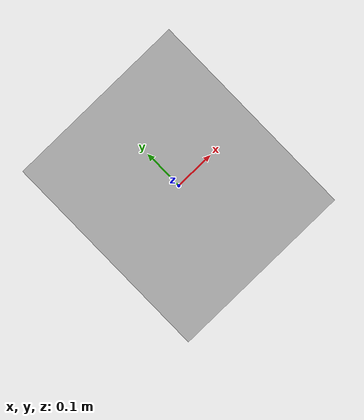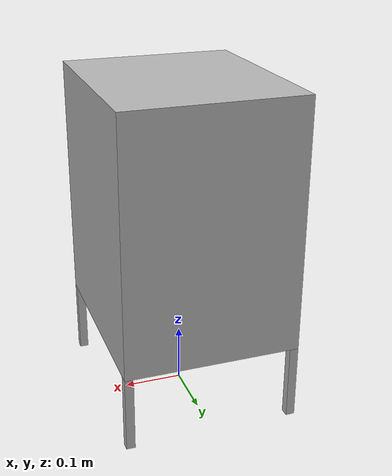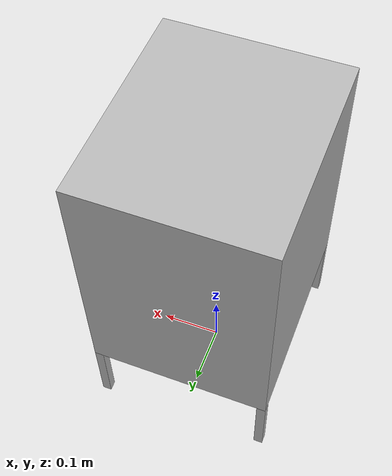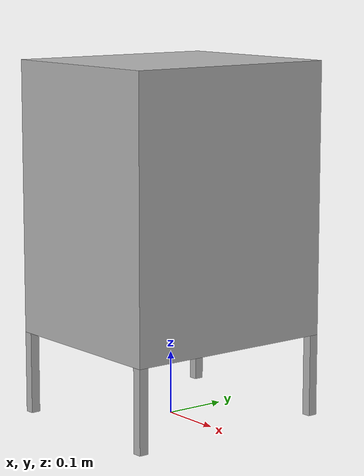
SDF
<?xml version="1.0"?>
<sdf version="1.6">
  <model name="rgo2019/white_drawer">
    <link name="1_link">
      <collision name="1_col">
        <geometry>
          <box>
            <size>0.3 0.35 0.43</size>
          </box>
        </geometry>
      </collision>
      <visual name="1_vis">
        <geometry>
          <box>
            <size>0.3 0.35 0.43</size>
          </box>
        </geometry>
      </visual>
      <pose>0.0 0.0 0.345 0 0 0</pose>
    </link>
    <link name="2_link">
      <collision name="2_col">
        <geometry>
          <box>
            <size>0.015 0.015 0.13</size>
          </box>
        </geometry>
      </collision>
      <visual name="2_vis">
        <geometry>
          <box>
            <size>0.015 0.015 0.13</size>
          </box>
        </geometry>
      </visual>
      <pose>-0.1425 -0.1675 0.065 0 0 0</pose>
    </link>
    <link name="3_link">
      <collision name="3_col">
        <geometry>
          <box>
            <size>0.015 0.015 0.13</size>
          </box>
        </geometry>
      </collision>
      <visual name="3_vis">
        <geometry>
          <box>
            <size>0.015 0.015 0.13</size>
          </box>
        </geometry>
      </visual>
      <pose>0.1425 -0.1675 0.065 0 0 0</pose>
    </link>
    <link name="4_link">
      <collision name="4_col">
        <geometry>
          <box>
            <size>0.015 0.015 0.13</size>
          </box>
        </geometry>
      </collision>
      <visual name="4_vis">
        <geometry>
          <box>
            <size>0.015 0.015 0.13</size>
          </box>
        </geometry>
      </visual>
      <pose>-0.1425 0.1675 0.065 0 0 0</pose>
    </link>
    <link name="5_link">
      <collision name="5_col">
        <geometry>
          <box>
            <size>0.015 0.015 0.13</size>
          </box>
        </geometry>
      </collision>
      <visual name="5_vis">
        <geometry>
          <box>
            <size>0.015 0.015 0.13</size>
          </box>
        </geometry>
      </visual>
      <pose>0.1425 0.1675 0.065 0 0 0</pose>
    </link>
    <link name="on_top_of">
      <virtual_volume name="on_top_of_vv">
        <geometry>
          <box>
            <size>0.28 0.29 0.25</size>
          </box>
        </geometry>
        <pose>0.0 0.0 0.705 0 0 0</pose>
      </virtual_volume>
    </link>
    <link name="in_front_of">
      <virtual_volume name="in_front_of_vv">
        <geometry>
          <box>
            <size>0.2 0.15 0.01</size>
          </box>
        </geometry>
        <pose>0.65 0.0 0.005 0 0 0</pose>
      </virtual_volume>
    </link>
    <static>true</static>
  </model>
</sdf>
